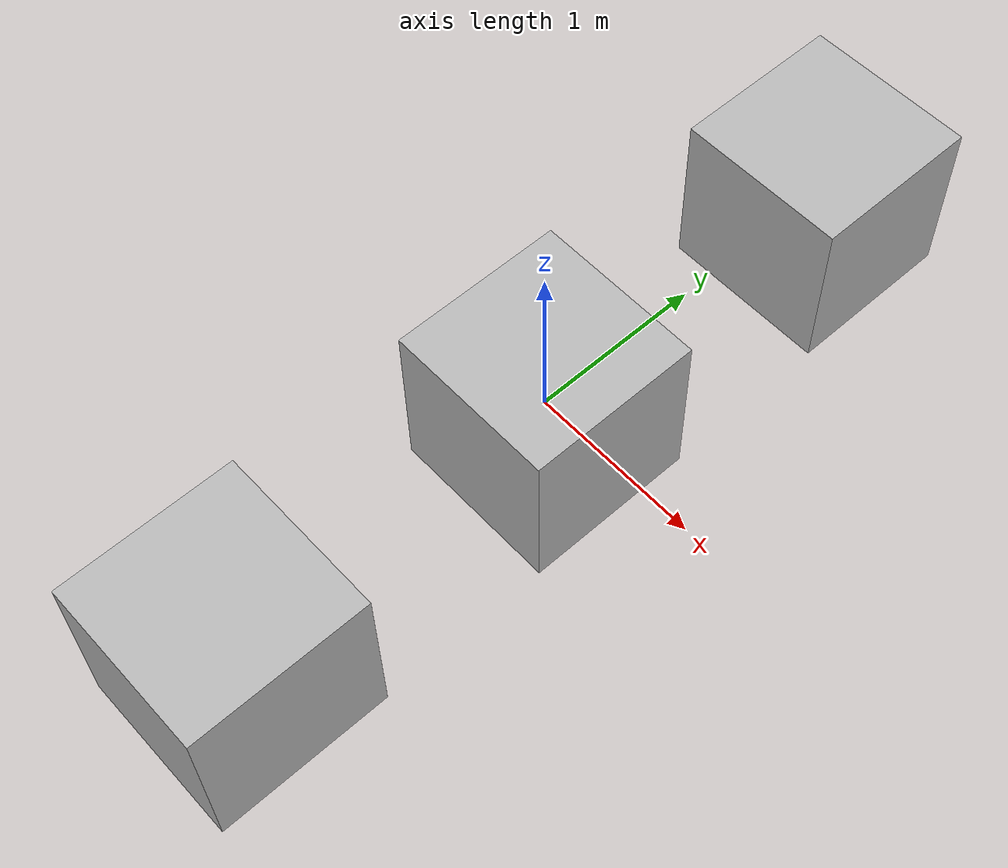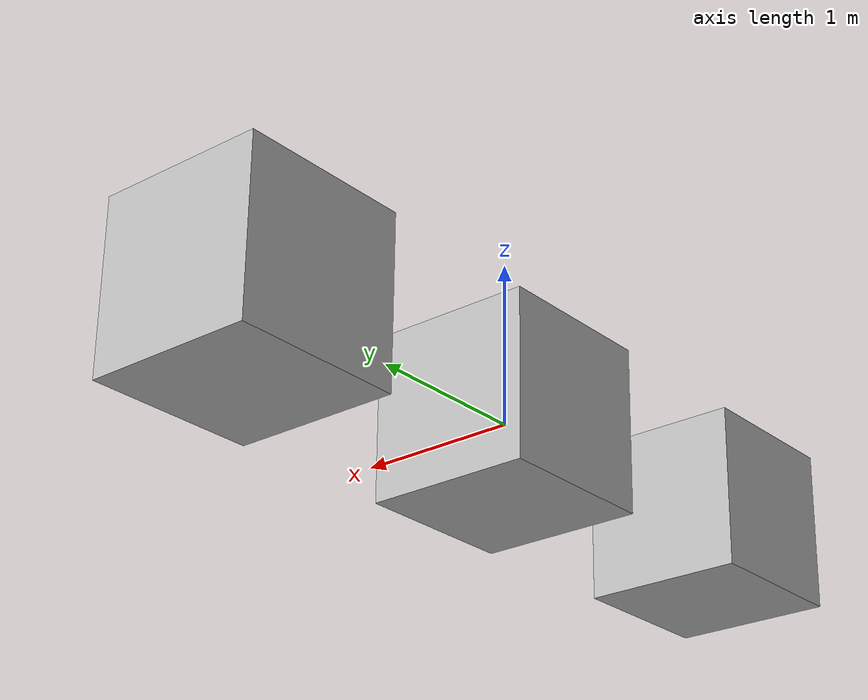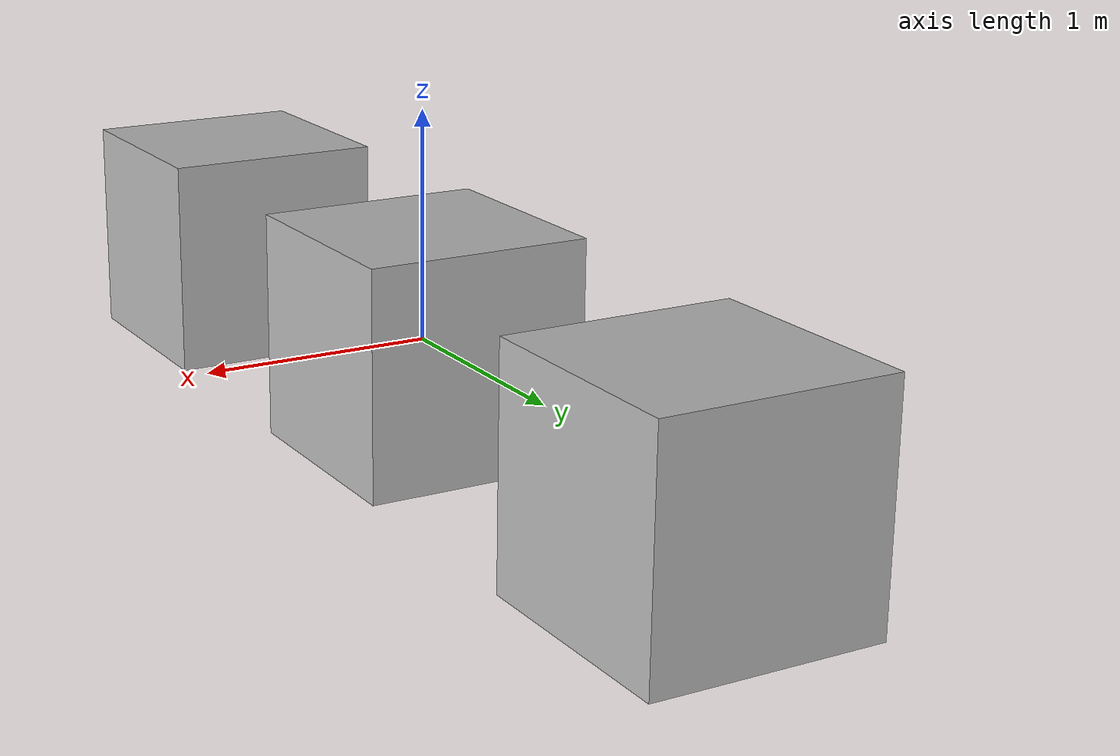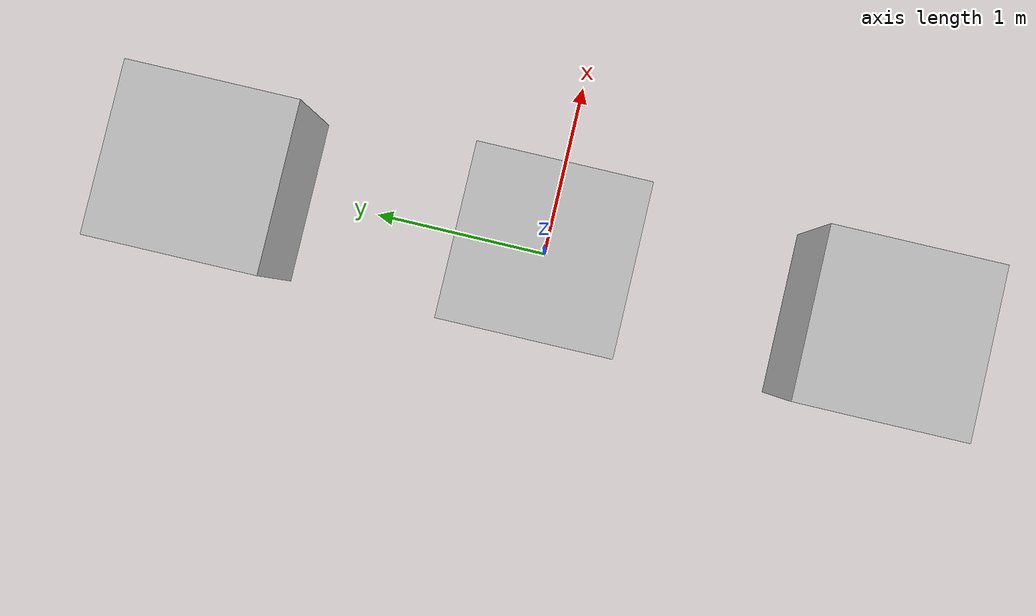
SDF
<?xml version='1.0'?>
<sdf version='1.6'>
  <model name='obs_box_multi'>
    <pose frame=''>0 0 0 0 -0 -1.5708</pose>
    <link name="obs_box1">
      <collision name="collision">
        <geometry>
          <box>
            <size>1.0 1.0 1.0</size>
          </box>
        </geometry>
      </collision>
      <visual name="visual">
        <geometry>
          <box>
            <size>1.0 1.0 1.0</size>
          </box>
        </geometry>
      </visual>
      <pose frame=''>0 0 0 0 -0 0</pose>
    </link>
    <link name="obs_box2">
      <collision name="collision">
        <geometry>
          <box>
            <size>1.0 1.0 1.0</size>
          </box>
        </geometry>
      </collision>
      <visual name="visual">
        <geometry>
          <box>
            <size>1.0 1.0 1.0</size>
          </box>
        </geometry>
      </visual>
      <pose frame=''>-2 0 0 0 -0 0</pose>
    </link>
    <link name="obs_box3">
      <collision name="collision">
        <geometry>
          <box>
            <size>1.0 1.0 1.0</size>
          </box>
        </geometry>
      </collision>
      <visual name="visual">
        <geometry>
          <box>
            <size>1.0 1.0 1.0</size>
          </box>
        </geometry>
      </visual>
      <pose frame=''>2 0 0 0 -0 0</pose>
    </link>
  </model>
</sdf>
